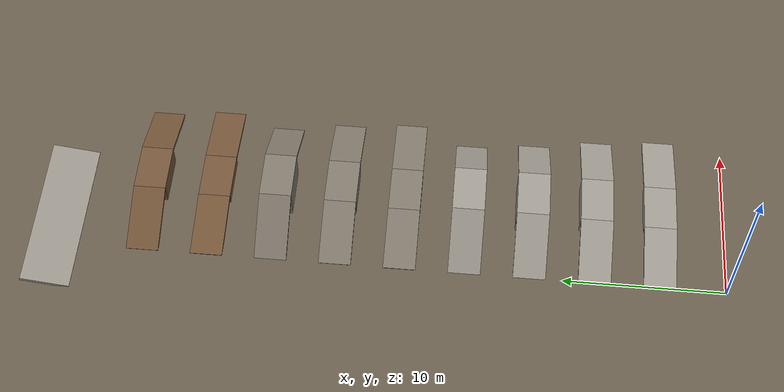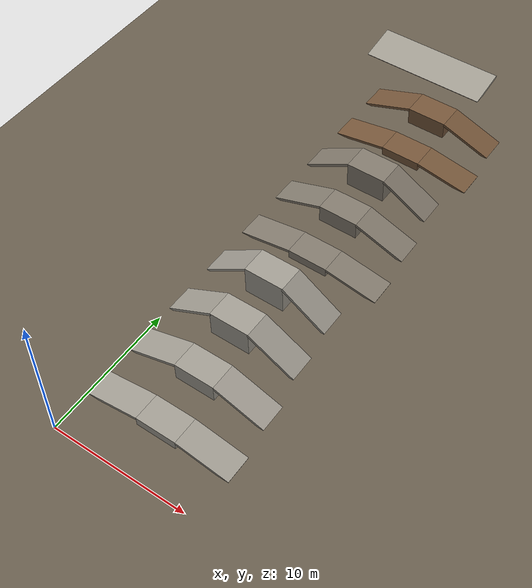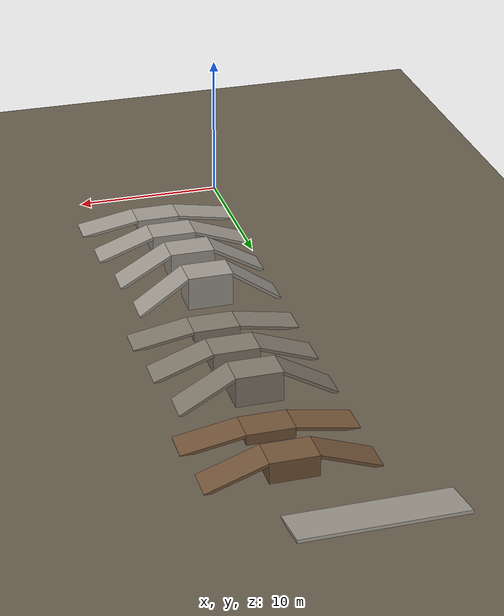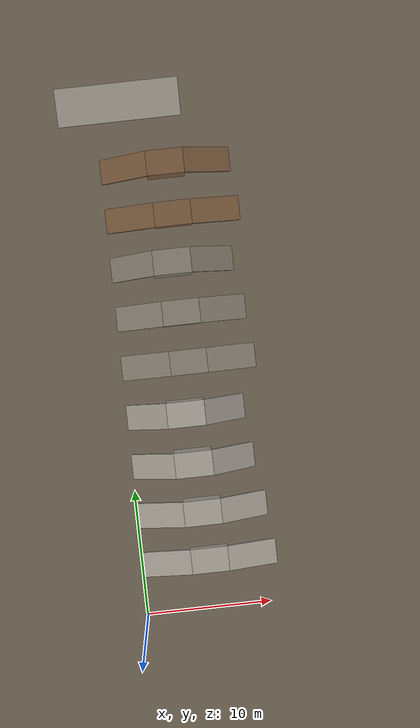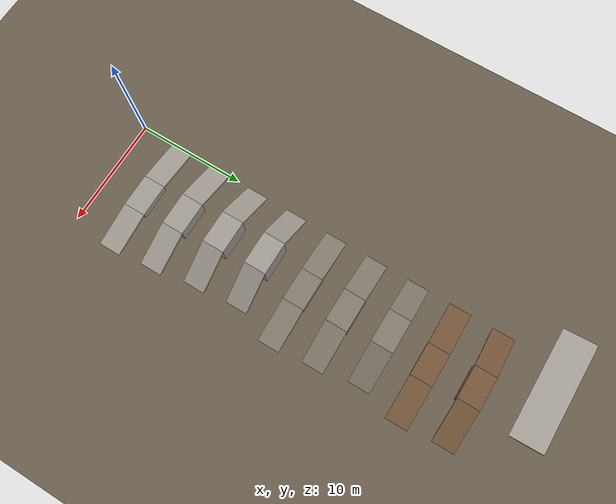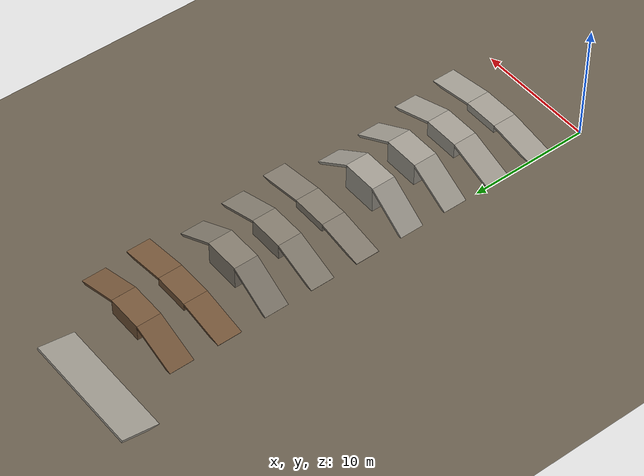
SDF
<?xml version="1.0" ?>
<sdf version="1.8">
  <world name="masonassist_world">
    <!-- Generated by tools/make_terrain_world.py for tools/terrain_test.py -->
    <!-- Physics parameters - identical to masonassist.world, unchanged -->
    <physics type="ode">
      <max_step_size>0.001</max_step_size>
      <real_time_factor>1.0</real_time_factor>
    </physics>

    <plugin name="gz::sim::systems::Physics" filename="gz-sim-physics-system"/>
    <plugin name="gz::sim::systems::UserCommands" filename="gz-sim-user-commands-system"/>
    <plugin name="gz::sim::systems::SceneBroadcaster" filename="gz-sim-scene-broadcaster-system"/>
    <plugin name="gz::sim::systems::Contact" filename="gz-sim-contact-system"/>
    <plugin name="gz::sim::systems::Imu" filename="gz-sim-imu-system"/>
    <plugin name="gz::sim::systems::Sensors" filename="gz-sim-sensors-system">
      <render_engine>ogre2</render_engine>
    </plugin>

    <gravity>0 0 -9.8</gravity>

    <scene>
      <ambient>0.55 0.52 0.5 1</ambient>
      <background>0.62 0.68 0.75 1</background>
      <shadows>true</shadows>
      <grid>false</grid>
    </scene>

    <gui fullscreen="false">
      <plugin filename="MinimalScene" name="3D View">
        <gz-gui>
          <title>3D View</title>
          <property type="bool" key="showTitleBar">false</property>
          <property type="string" key="state">docked</property>
        </gz-gui>
        <engine>ogre2</engine>
        <scene>scene</scene>
        <ambient_light>0.55 0.52 0.5</ambient_light>
        <background_color>0.62 0.68 0.75</background_color>
        <camera_pose>-5.5 -5.5 3.6 0 0.3 0.78</camera_pose>
      </plugin>
      <plugin filename="EntityContextMenuPlugin" name="Entity context menu">
        <gz-gui>
          <property key="state" type="string">floating</property>
          <property key="width" type="double">5</property>
          <property key="height" type="double">5</property>
          <property key="showTitleBar" type="bool">false</property>
        </gz-gui>
      </plugin>
      <plugin filename="GzSceneManager" name="Scene Manager">
        <gz-gui>
          <property key="resizable" type="bool">false</property>
          <property key="width" type="double">5</property>
          <property key="height" type="double">5</property>
          <property key="state" type="string">floating</property>
          <property key="showTitleBar" type="bool">false</property>
        </gz-gui>
      </plugin>
      <plugin filename="InteractiveViewControl" name="Interactive view control">
        <gz-gui>
          <property key="resizable" type="bool">false</property>
          <property key="width" type="double">5</property>
          <property key="height" type="double">5</property>
          <property key="state" type="string">floating</property>
          <property key="showTitleBar" type="bool">false</property>
        </gz-gui>
      </plugin>
      <plugin filename="CameraTracking" name="Camera Tracking">
        <gz-gui>
          <property key="resizable" type="bool">false</property>
          <property key="width" type="double">5</property>
          <property key="height" type="double">5</property>
          <property key="state" type="string">floating</property>
          <property key="showTitleBar" type="bool">false</property>
        </gz-gui>
      </plugin>
      <plugin filename="WorldControl" name="World control">
        <gz-gui>
          <title>World control</title>
          <property type="bool" key="showTitleBar">false</property>
          <property type="bool" key="resizable">false</property>
          <property type="double" key="height">72</property>
          <property type="double" key="z">1</property>
          <property type="string" key="state">floating</property>
          <anchors target="3D View">
            <line own="left" target="left"/>
            <line own="bottom" target="bottom"/>
          </anchors>
        </gz-gui>
        <play_pause>true</play_pause>
        <step>true</step>
        <start_paused>false</start_paused>
        <use_event>true</use_event>
      </plugin>
      <plugin filename="WorldStats" name="World stats">
        <gz-gui>
          <title>World stats</title>
          <property type="bool" key="showTitleBar">false</property>
          <property type="bool" key="resizable">false</property>
          <property type="double" key="height">110</property>
          <property type="double" key="width">290</property>
          <property type="double" key="z">1</property>
          <property type="string" key="state">floating</property>
          <anchors target="3D View">
            <line own="right" target="right"/>
            <line own="bottom" target="bottom"/>
          </anchors>
        </gz-gui>
        <sim_time>true</sim_time>
        <real_time>true</real_time>
        <real_time_factor>true</real_time_factor>
        <iterations>true</iterations>
      </plugin>
    </gui>

    <!-- Ground: compacted-soil/concrete-yard tone, no grid. A second,
         slightly varied patch breaks up the uniform flat color. -->
    <model name="ground_plane">
      <static>true</static>
      <link name="link">
        <collision name="collision">
          <geometry><plane><normal>0 0 1</normal><size>100 100</size></plane></geometry>
          <surface><friction><ode><mu>1.0</mu><mu2>1.0</mu2></ode></friction></surface>
        </collision>
        <visual name="visual">
          <geometry><plane><normal>0 0 1</normal><size>100 100</size></plane></geometry>
          <material><ambient>0.4 0.36 0.3 1</ambient><diffuse>0.4 0.36 0.3 1</diffuse></material>
        </visual>
      </link>
    </model>

    <!-- Ramp lanes: 4 m up at the slope angle, 3 m plateau, 4 m down -->
    <model name="ramp_up_concrete_10"><static>true</static><pose>1.9870 4.0000 0.2488 0.000000 -0.174533 0</pose> <!-- 10 deg concrete, rise 0.69 m -->
      <link name="link"><collision name="c"><geometry><box><size>4.0000 2.0000 0.2000</size></box></geometry><surface><friction><ode><mu>1.0</mu><mu2>1.0</mu2></ode></friction></surface></collision><visual name="v"><geometry><box><size>4.0000 2.0000 0.2000</size></box></geometry><material><ambient>0.62 0.6 0.56 1</ambient><diffuse>0.62 0.6 0.56 1</diffuse></material></visual></link></model>
    <model name="plateau_concrete_10"><static>true</static><pose>5.4392 4.0000 0.3473 0.000000 0.000000 0</pose>
      <link name="link"><collision name="c"><geometry><box><size>3.0000 2.0000 0.6946</size></box></geometry><surface><friction><ode><mu>1.0</mu><mu2>1.0</mu2></ode></friction></surface></collision><visual name="v"><geometry><box><size>3.0000 2.0000 0.6946</size></box></geometry><material><ambient>0.62 0.6 0.56 1</ambient><diffuse>0.62 0.6 0.56 1</diffuse></material></visual></link></model>
    <model name="ramp_down_concrete_10"><static>true</static><pose>8.8915 4.0000 0.2488 0.000000 0.174533 0</pose>
      <link name="link"><collision name="c"><geometry><box><size>4.0000 2.0000 0.2000</size></box></geometry><surface><friction><ode><mu>1.0</mu><mu2>1.0</mu2></ode></friction></surface></collision><visual name="v"><geometry><box><size>4.0000 2.0000 0.2000</size></box></geometry><material><ambient>0.62 0.6 0.56 1</ambient><diffuse>0.62 0.6 0.56 1</diffuse></material></visual></link></model>
    <model name="ramp_up_concrete_20"><static>true</static><pose>1.9136 8.0000 0.5901 0.000000 -0.349066 0</pose> <!-- 20 deg concrete, rise 1.37 m -->
      <link name="link"><collision name="c"><geometry><box><size>4.0000 2.0000 0.2000</size></box></geometry><surface><friction><ode><mu>1.0</mu><mu2>1.0</mu2></ode></friction></surface></collision><visual name="v"><geometry><box><size>4.0000 2.0000 0.2000</size></box></geometry><material><ambient>0.62 0.6 0.56 1</ambient><diffuse>0.62 0.6 0.56 1</diffuse></material></visual></link></model>
    <model name="plateau_concrete_20"><static>true</static><pose>5.2588 8.0000 0.6840 0.000000 0.000000 0</pose>
      <link name="link"><collision name="c"><geometry><box><size>3.0000 2.0000 1.3681</size></box></geometry><surface><friction><ode><mu>1.0</mu><mu2>1.0</mu2></ode></friction></surface></collision><visual name="v"><geometry><box><size>3.0000 2.0000 1.3681</size></box></geometry><material><ambient>0.62 0.6 0.56 1</ambient><diffuse>0.62 0.6 0.56 1</diffuse></material></visual></link></model>
    <model name="ramp_down_concrete_20"><static>true</static><pose>8.6040 8.0000 0.5901 0.000000 0.349066 0</pose>
      <link name="link"><collision name="c"><geometry><box><size>4.0000 2.0000 0.2000</size></box></geometry><surface><friction><ode><mu>1.0</mu><mu2>1.0</mu2></ode></friction></surface></collision><visual name="v"><geometry><box><size>4.0000 2.0000 0.2000</size></box></geometry><material><ambient>0.62 0.6 0.56 1</ambient><diffuse>0.62 0.6 0.56 1</diffuse></material></visual></link></model>
    <model name="ramp_up_concrete_30"><static>true</static><pose>1.7821 12.0000 0.9134 0.000000 -0.523599 0</pose> <!-- 30 deg concrete, rise 2.00 m -->
      <link name="link"><collision name="c"><geometry><box><size>4.0000 2.0000 0.2000</size></box></geometry><surface><friction><ode><mu>1.0</mu><mu2>1.0</mu2></ode></friction></surface></collision><visual name="v"><geometry><box><size>4.0000 2.0000 0.2000</size></box></geometry><material><ambient>0.62 0.6 0.56 1</ambient><diffuse>0.62 0.6 0.56 1</diffuse></material></visual></link></model>
    <model name="plateau_concrete_30"><static>true</static><pose>4.9641 12.0000 1.0000 0.000000 0.000000 0</pose>
      <link name="link"><collision name="c"><geometry><box><size>3.0000 2.0000 2.0000</size></box></geometry><surface><friction><ode><mu>1.0</mu><mu2>1.0</mu2></ode></friction></surface></collision><visual name="v"><geometry><box><size>3.0000 2.0000 2.0000</size></box></geometry><material><ambient>0.62 0.6 0.56 1</ambient><diffuse>0.62 0.6 0.56 1</diffuse></material></visual></link></model>
    <model name="ramp_down_concrete_30"><static>true</static><pose>8.1462 12.0000 0.9134 0.000000 0.523599 0</pose>
      <link name="link"><collision name="c"><geometry><box><size>4.0000 2.0000 0.2000</size></box></geometry><surface><friction><ode><mu>1.0</mu><mu2>1.0</mu2></ode></friction></surface></collision><visual name="v"><geometry><box><size>4.0000 2.0000 0.2000</size></box></geometry><material><ambient>0.62 0.6 0.56 1</ambient><diffuse>0.62 0.6 0.56 1</diffuse></material></visual></link></model>
    <model name="ramp_up_concrete_35"><static>true</static><pose>1.6957 16.0000 1.0652 0.000000 -0.610865 0</pose> <!-- 35 deg concrete, rise 2.29 m -->
      <link name="link"><collision name="c"><geometry><box><size>4.0000 2.0000 0.2000</size></box></geometry><surface><friction><ode><mu>1.0</mu><mu2>1.0</mu2></ode></friction></surface></collision><visual name="v"><geometry><box><size>4.0000 2.0000 0.2000</size></box></geometry><material><ambient>0.62 0.6 0.56 1</ambient><diffuse>0.62 0.6 0.56 1</diffuse></material></visual></link></model>
    <model name="plateau_concrete_35"><static>true</static><pose>4.7766 16.0000 1.1472 0.000000 0.000000 0</pose>
      <link name="link"><collision name="c"><geometry><box><size>3.0000 2.0000 2.2943</size></box></geometry><surface><friction><ode><mu>1.0</mu><mu2>1.0</mu2></ode></friction></surface></collision><visual name="v"><geometry><box><size>3.0000 2.0000 2.2943</size></box></geometry><material><ambient>0.62 0.6 0.56 1</ambient><diffuse>0.62 0.6 0.56 1</diffuse></material></visual></link></model>
    <model name="ramp_down_concrete_35"><static>true</static><pose>7.8576 16.0000 1.0652 0.000000 0.610865 0</pose>
      <link name="link"><collision name="c"><geometry><box><size>4.0000 2.0000 0.2000</size></box></geometry><surface><friction><ode><mu>1.0</mu><mu2>1.0</mu2></ode></friction></surface></collision><visual name="v"><geometry><box><size>4.0000 2.0000 0.2000</size></box></geometry><material><ambient>0.62 0.6 0.56 1</ambient><diffuse>0.62 0.6 0.56 1</diffuse></material></visual></link></model>
    <model name="ramp_up_gravel_10"><static>true</static><pose>1.9870 20.0000 0.2488 0.000000 -0.174533 0</pose> <!-- 10 deg gravel, rise 0.69 m -->
      <link name="link"><collision name="c"><geometry><box><size>4.0000 2.0000 0.2000</size></box></geometry><surface><friction><ode><mu>0.6</mu><mu2>0.6</mu2></ode></friction></surface></collision><visual name="v"><geometry><box><size>4.0000 2.0000 0.2000</size></box></geometry><material><ambient>0.5 0.47 0.42 1</ambient><diffuse>0.5 0.47 0.42 1</diffuse></material></visual></link></model>
    <model name="plateau_gravel_10"><static>true</static><pose>5.4392 20.0000 0.3473 0.000000 0.000000 0</pose>
      <link name="link"><collision name="c"><geometry><box><size>3.0000 2.0000 0.6946</size></box></geometry><surface><friction><ode><mu>0.6</mu><mu2>0.6</mu2></ode></friction></surface></collision><visual name="v"><geometry><box><size>3.0000 2.0000 0.6946</size></box></geometry><material><ambient>0.5 0.47 0.42 1</ambient><diffuse>0.5 0.47 0.42 1</diffuse></material></visual></link></model>
    <model name="ramp_down_gravel_10"><static>true</static><pose>8.8915 20.0000 0.2488 0.000000 0.174533 0</pose>
      <link name="link"><collision name="c"><geometry><box><size>4.0000 2.0000 0.2000</size></box></geometry><surface><friction><ode><mu>0.6</mu><mu2>0.6</mu2></ode></friction></surface></collision><visual name="v"><geometry><box><size>4.0000 2.0000 0.2000</size></box></geometry><material><ambient>0.5 0.47 0.42 1</ambient><diffuse>0.5 0.47 0.42 1</diffuse></material></visual></link></model>
    <model name="ramp_up_gravel_20"><static>true</static><pose>1.9136 24.0000 0.5901 0.000000 -0.349066 0</pose> <!-- 20 deg gravel, rise 1.37 m -->
      <link name="link"><collision name="c"><geometry><box><size>4.0000 2.0000 0.2000</size></box></geometry><surface><friction><ode><mu>0.6</mu><mu2>0.6</mu2></ode></friction></surface></collision><visual name="v"><geometry><box><size>4.0000 2.0000 0.2000</size></box></geometry><material><ambient>0.5 0.47 0.42 1</ambient><diffuse>0.5 0.47 0.42 1</diffuse></material></visual></link></model>
    <model name="plateau_gravel_20"><static>true</static><pose>5.2588 24.0000 0.6840 0.000000 0.000000 0</pose>
      <link name="link"><collision name="c"><geometry><box><size>3.0000 2.0000 1.3681</size></box></geometry><surface><friction><ode><mu>0.6</mu><mu2>0.6</mu2></ode></friction></surface></collision><visual name="v"><geometry><box><size>3.0000 2.0000 1.3681</size></box></geometry><material><ambient>0.5 0.47 0.42 1</ambient><diffuse>0.5 0.47 0.42 1</diffuse></material></visual></link></model>
    <model name="ramp_down_gravel_20"><static>true</static><pose>8.6040 24.0000 0.5901 0.000000 0.349066 0</pose>
      <link name="link"><collision name="c"><geometry><box><size>4.0000 2.0000 0.2000</size></box></geometry><surface><friction><ode><mu>0.6</mu><mu2>0.6</mu2></ode></friction></surface></collision><visual name="v"><geometry><box><size>4.0000 2.0000 0.2000</size></box></geometry><material><ambient>0.5 0.47 0.42 1</ambient><diffuse>0.5 0.47 0.42 1</diffuse></material></visual></link></model>
    <model name="ramp_up_gravel_30"><static>true</static><pose>1.7821 28.0000 0.9134 0.000000 -0.523599 0</pose> <!-- 30 deg gravel, rise 2.00 m -->
      <link name="link"><collision name="c"><geometry><box><size>4.0000 2.0000 0.2000</size></box></geometry><surface><friction><ode><mu>0.6</mu><mu2>0.6</mu2></ode></friction></surface></collision><visual name="v"><geometry><box><size>4.0000 2.0000 0.2000</size></box></geometry><material><ambient>0.5 0.47 0.42 1</ambient><diffuse>0.5 0.47 0.42 1</diffuse></material></visual></link></model>
    <model name="plateau_gravel_30"><static>true</static><pose>4.9641 28.0000 1.0000 0.000000 0.000000 0</pose>
      <link name="link"><collision name="c"><geometry><box><size>3.0000 2.0000 2.0000</size></box></geometry><surface><friction><ode><mu>0.6</mu><mu2>0.6</mu2></ode></friction></surface></collision><visual name="v"><geometry><box><size>3.0000 2.0000 2.0000</size></box></geometry><material><ambient>0.5 0.47 0.42 1</ambient><diffuse>0.5 0.47 0.42 1</diffuse></material></visual></link></model>
    <model name="ramp_down_gravel_30"><static>true</static><pose>8.1462 28.0000 0.9134 0.000000 0.523599 0</pose>
      <link name="link"><collision name="c"><geometry><box><size>4.0000 2.0000 0.2000</size></box></geometry><surface><friction><ode><mu>0.6</mu><mu2>0.6</mu2></ode></friction></surface></collision><visual name="v"><geometry><box><size>4.0000 2.0000 0.2000</size></box></geometry><material><ambient>0.5 0.47 0.42 1</ambient><diffuse>0.5 0.47 0.42 1</diffuse></material></visual></link></model>
    <model name="ramp_up_clay_10"><static>true</static><pose>1.9870 32.0000 0.2488 0.000000 -0.174533 0</pose> <!-- 10 deg clay, rise 0.69 m -->
      <link name="link"><collision name="c"><geometry><box><size>4.0000 2.0000 0.2000</size></box></geometry><surface><friction><ode><mu>0.4</mu><mu2>0.4</mu2></ode></friction></surface></collision><visual name="v"><geometry><box><size>4.0000 2.0000 0.2000</size></box></geometry><material><ambient>0.45 0.33 0.22 1</ambient><diffuse>0.45 0.33 0.22 1</diffuse></material></visual></link></model>
    <model name="plateau_clay_10"><static>true</static><pose>5.4392 32.0000 0.3473 0.000000 0.000000 0</pose>
      <link name="link"><collision name="c"><geometry><box><size>3.0000 2.0000 0.6946</size></box></geometry><surface><friction><ode><mu>0.4</mu><mu2>0.4</mu2></ode></friction></surface></collision><visual name="v"><geometry><box><size>3.0000 2.0000 0.6946</size></box></geometry><material><ambient>0.45 0.33 0.22 1</ambient><diffuse>0.45 0.33 0.22 1</diffuse></material></visual></link></model>
    <model name="ramp_down_clay_10"><static>true</static><pose>8.8915 32.0000 0.2488 0.000000 0.174533 0</pose>
      <link name="link"><collision name="c"><geometry><box><size>4.0000 2.0000 0.2000</size></box></geometry><surface><friction><ode><mu>0.4</mu><mu2>0.4</mu2></ode></friction></surface></collision><visual name="v"><geometry><box><size>4.0000 2.0000 0.2000</size></box></geometry><material><ambient>0.45 0.33 0.22 1</ambient><diffuse>0.45 0.33 0.22 1</diffuse></material></visual></link></model>
    <model name="ramp_up_clay_20"><static>true</static><pose>1.9136 36.0000 0.5901 0.000000 -0.349066 0</pose> <!-- 20 deg clay, rise 1.37 m -->
      <link name="link"><collision name="c"><geometry><box><size>4.0000 2.0000 0.2000</size></box></geometry><surface><friction><ode><mu>0.4</mu><mu2>0.4</mu2></ode></friction></surface></collision><visual name="v"><geometry><box><size>4.0000 2.0000 0.2000</size></box></geometry><material><ambient>0.45 0.33 0.22 1</ambient><diffuse>0.45 0.33 0.22 1</diffuse></material></visual></link></model>
    <model name="plateau_clay_20"><static>true</static><pose>5.2588 36.0000 0.6840 0.000000 0.000000 0</pose>
      <link name="link"><collision name="c"><geometry><box><size>3.0000 2.0000 1.3681</size></box></geometry><surface><friction><ode><mu>0.4</mu><mu2>0.4</mu2></ode></friction></surface></collision><visual name="v"><geometry><box><size>3.0000 2.0000 1.3681</size></box></geometry><material><ambient>0.45 0.33 0.22 1</ambient><diffuse>0.45 0.33 0.22 1</diffuse></material></visual></link></model>
    <model name="ramp_down_clay_20"><static>true</static><pose>8.6040 36.0000 0.5901 0.000000 0.349066 0</pose>
      <link name="link"><collision name="c"><geometry><box><size>4.0000 2.0000 0.2000</size></box></geometry><surface><friction><ode><mu>0.4</mu><mu2>0.4</mu2></ode></friction></surface></collision><visual name="v"><geometry><box><size>4.0000 2.0000 0.2000</size></box></geometry><material><ambient>0.45 0.33 0.22 1</ambient><diffuse>0.45 0.33 0.22 1</diffuse></material></visual></link></model>

    <!-- Side slope: 10 deg roll, low edge on the ground at y = 40.0 -->
    <model name="cross_slope_10"><static>true</static><pose>2.0000 41.4772 0.1620 0.174533 0.000000 0</pose>
      <link name="link"><collision name="c"><geometry><box><size>10.0000 3.0000 0.2000</size></box></geometry><surface><friction><ode><mu>1.0</mu><mu2>1.0</mu2></ode></friction></surface></collision><visual name="v"><geometry><box><size>10.0000 3.0000 0.2000</size></box></geometry><material><ambient>0.62 0.6 0.56 1</ambient><diffuse>0.62 0.6 0.56 1</diffuse></material></visual></link></model>
  </world>
</sdf>
